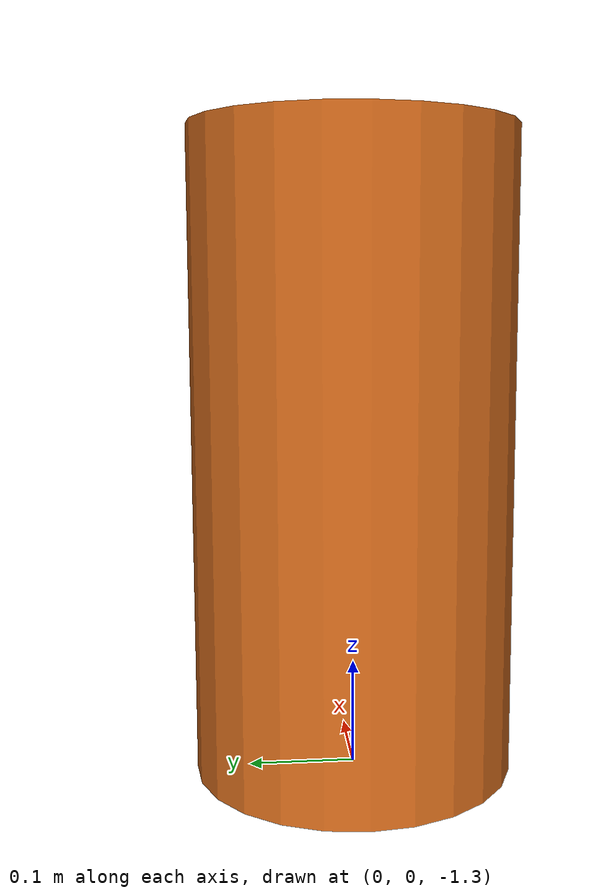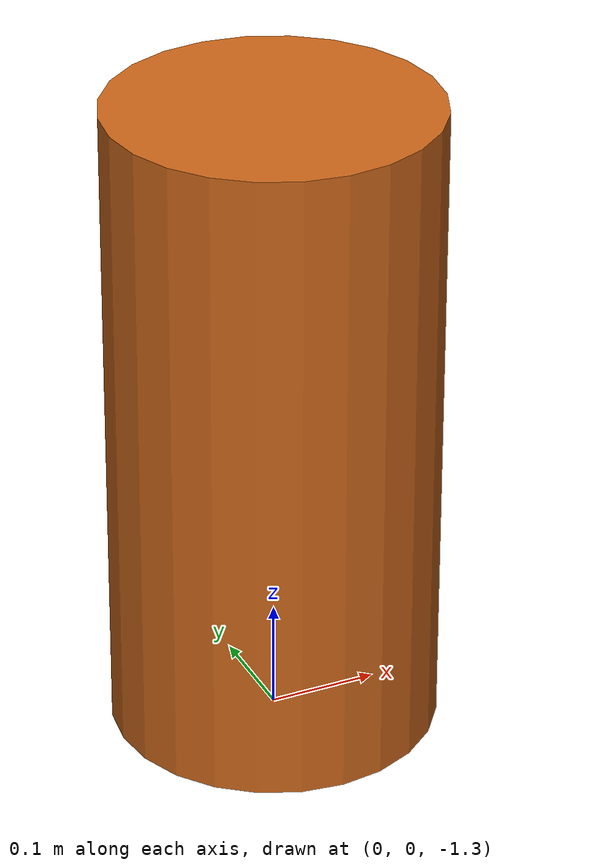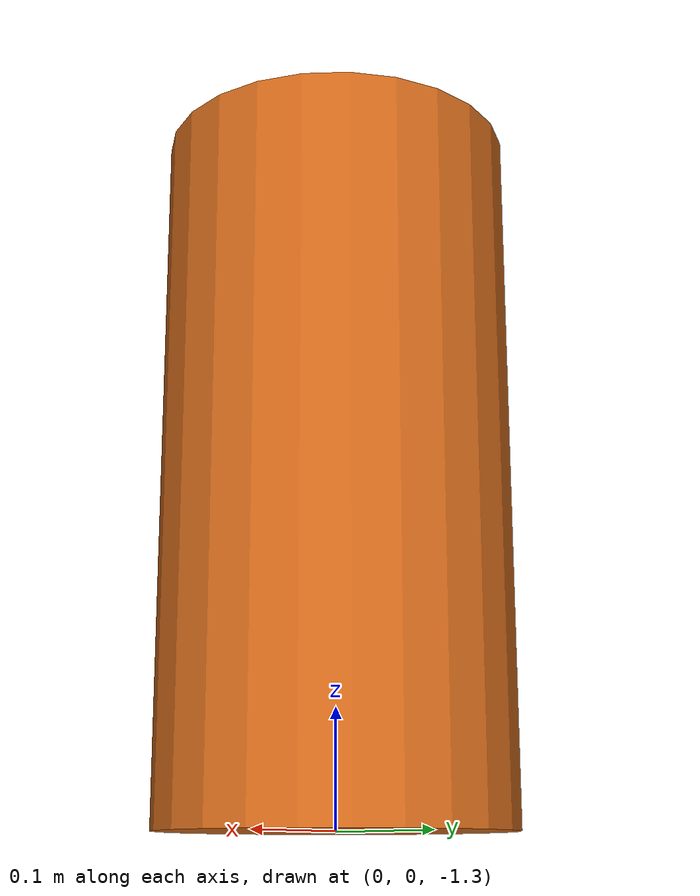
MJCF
<mujoco model="underwater_rov_base">
  <compiler inertiafromgeom="true"/>
  <option integrator="implicitfast"/>
  <worldbody>
    <body name="rov" pos="0 0 -1.0">
      <freejoint/>
      <geom name="rov_body"
            type="cylinder"
            size="0.15 0.30"
            mass="10.0"
            rgba="0.8 0.4 0.1 1"
            fluidshape="ellipsoid"/>
    </body>
  </worldbody>
  <sensor>
    <framepos    name="pos" objtype="body" objname="rov"/>
    <framelinvel name="vel" objtype="body" objname="rov"/>
  </sensor>
</mujoco>
